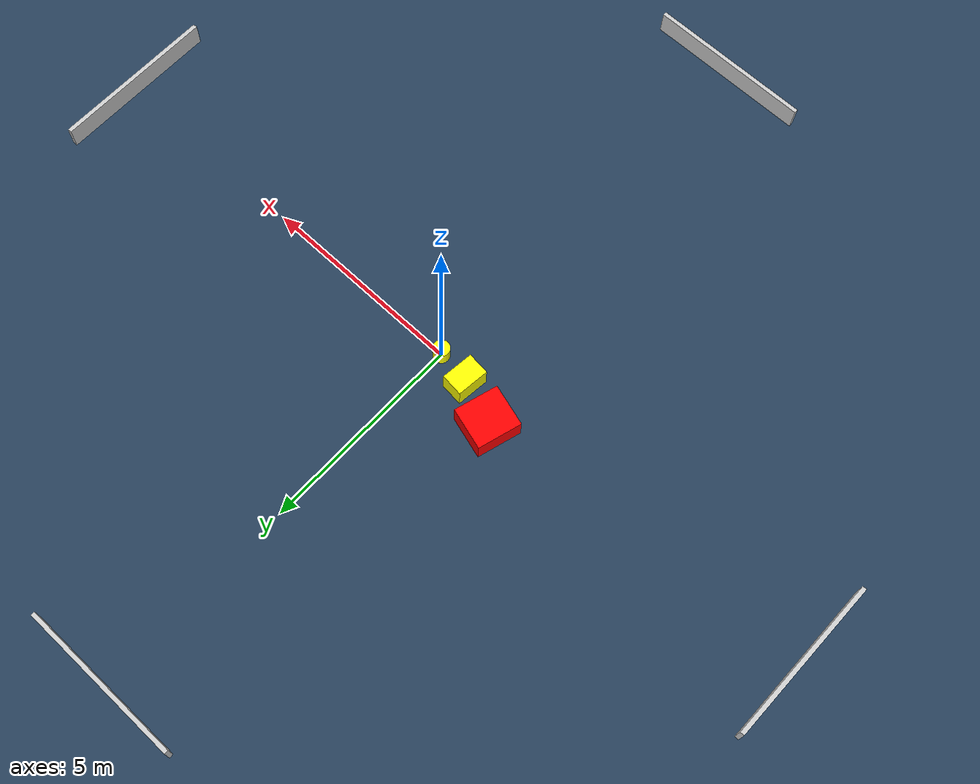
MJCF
<?xml version="1.0" ?>
<mujoco model="generated_environment">
  <option timestep="0.01" integrator="RK4" cone="elliptic"/>
  <default>
    <geom density="1"/>
  </default>
  <asset>
    <texture builtin="gradient" height="3072" name="skybox" rgb1="0.3 0.5 0.7" rgb2="0 0 0" type="skybox" width="512"/>
    <texture builtin="checker" height="300" name="groundplane" rgb1="0.2 0.3 0.4" rgb2="0.1 0.2 0.3" type="2d" width="300"/>
    <material name="groundplane" reflectance="0.2" texrepeat="5 5" texture="groundplane"/>
  </asset>
  <worldbody>
    <light dir="0 0 -1" directional="true" pos="0 0 1.5"/>
    <geom condim="3" friction="0.5 0.005 0.001" material="groundplane" name="floor" pos="0 0 0" size="0 0 0.05" type="plane"/>
    <body name="walls">
      <geom name="wall_1" condim="4" pos="-10.0 0.0 0.3" rgba="0.800000011920929 0.800000011920929 0.800000011920929 1.0" size="0.05 2.0 0.3" type="box"/>
      <geom name="wall_2" condim="4" pos="10.0 0.0 0.3" rgba="0.800000011920929 0.800000011920929 0.800000011920929 1.0" size="0.05 2.0 0.3" type="box"/>
      <geom name="wall_3" condim="4" pos="0.0 -10.0 0.3" rgba="0.800000011920929 0.800000011920929 0.800000011920929 1.0" size="2.0 0.05 0.3" type="box"/>
      <geom name="wall_4" condim="4" pos="0.0 10.0 0.3" rgba="0.800000011920929 0.800000011920929 0.800000011920929 1.0" size="2.0 0.05 0.3" type="box"/>
    </body>
    <body name="robot">
      <joint name="joint_x" type="slide" pos="0 0 0" axis="1 0 0"/>
      <joint name="joint_y" type="slide" pos="0 0 0" axis="0 1 0"/>
      <geom name="robot" type="cylinder" pos="0.0 0.0 0.2" size="0.2 0.2 0.0" mass="5.0" friction="1.0 0.005 0.0001" condim="4" rgba="1.0 1.0 0.0 1.0"/>
    </body>
    <body name="obstacle_1_movable">
      <geom name="obstacle_1_movable" condim="4" pos="-0.8504037863202037 0.1577620070512134 0.3" euler="0 0 263.9684008189731" friction="0.0 0.005 0.001" rgba="1.0 1.0 0.0 1.0" size="0.3895175602006843 0.2677518369217814 0.3" type="box" mass="0.1"/>
      <joint type="free"/>
    </body>
    <body name="obstacle_2_static">
      <geom name="obstacle_2_static" condim="4" pos="-1.872107765464778 0.5420918719821017 0.3" euler="0 0 253.78013269032573" friction="0.0 0.005 0.001" rgba="1.0 0.0 0.0 1.0" size="0.538316506355389 0.5058841619091701 0.3" type="box"/>
    </body>
  </worldbody>
  <actuator>
    <motor name="actuator_x" joint="joint_x" gear="1" ctrlrange="-1 1"/>
    <motor name="actuator_y" joint="joint_y" gear="1" ctrlrange="-1 1"/>
  </actuator>
</mujoco>
